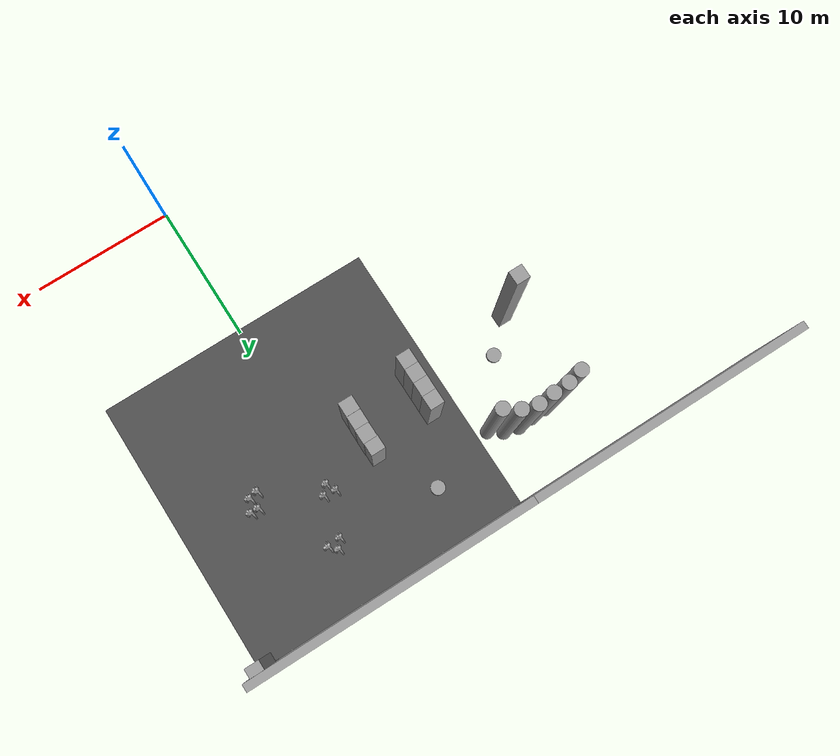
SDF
<sdf version="1.6">
 <model name="MW_world_1_0_0">
  <link name="link_0_0_clone">
   <pose>-16.5511 24.973 0.5 0 -0 0</pose>
   <inertial>
    <mass>9.05819</mass>
    <inertia><ixx>62.5018</ixx><ixy>0</ixy><ixz>0</ixz><iyy>62.5018</iyy><iyz>0</iyz><izz>1.13227</izz></inertia>
   </inertial>
   <visual name="visual_0">
    <geometry><cylinder><radius>0.5</radius><length>9.05819</length></cylinder></geometry>
    <material>
     <lighting>1</lighting>
     <script><uri>file://media/materials/scripts/gazebo.material</uri><name>Gazebo/Grey</name></script>
     <ambient>0.3 0.3 0.3 1</ambient>
     <diffuse>0.7 0.7 0.7 1</diffuse>
     <specular>0.01 0.01 0.01 1</specular>
     <emissive>0 0 0 1</emissive>
     <shader type="pixel"/>
    </material>
   </visual>
   <collision name="collision">
    <geometry><cylinder><radius>0.5</radius><length>9.05819</length></cylinder></geometry>
    <surface>
     <friction>
      <ode><mu>1</mu><mu2>1</mu2><fdir1>0 0 0</fdir1><slip1>0</slip1><slip2>0</slip2></ode>
      <torsional>
       <coefficient>1</coefficient>
       <patch_radius>0</patch_radius>
       <surface_radius>0</surface_radius>
       <use_patch_radius>1</use_patch_radius>
       <ode><slip>0</slip></ode>
      </torsional>
     </friction>
     <bounce><restitution_coefficient>0</restitution_coefficient><threshold>1e+06</threshold></bounce>
     <contact>
      <collide_without_contact>0</collide_without_contact>
      <collide_without_contact_bitmask>1</collide_without_contact_bitmask>
      <collide_bitmask>1</collide_bitmask>
      <ode>
       <soft_cfm>0</soft_cfm>
       <soft_erp>0.2</soft_erp>
       <kp>1e+13</kp>
       <kd>1</kd>
       <max_vel>0.01</max_vel>
       <min_depth>0</min_depth>
      </ode>
      <bullet>
       <split_impulse>1</split_impulse>
       <split_impulse_penetration_threshold>-0.01</split_impulse_penetration_threshold>
       <soft_cfm>0</soft_cfm>
       <soft_erp>0.2</soft_erp>
       <kp>1e+13</kp>
       <kd>1</kd>
      </bullet>
     </contact>
    </surface>
   </collision>
  </link>
  <link name="link_0_0_clone_3">
   <pose>-12.0571 25.0476 0.5 0 -0 0</pose>
   <inertial>
    <mass>9.05819</mass>
    <inertia><ixx>62.5018</ixx><ixy>0</ixy><ixz>0</ixz><iyy>62.5018</iyy><iyz>0</iyz><izz>1.13227</izz></inertia>
   </inertial>
   <visual name="visual_0">
    <geometry><cylinder><radius>0.5</radius><length>9.05819</length></cylinder></geometry>
    <material>
     <lighting>1</lighting>
     <script><uri>file://media/materials/scripts/gazebo.material</uri><name>Gazebo/Grey</name></script>
     <ambient>0.3 0.3 0.3 1</ambient>
     <diffuse>0.7 0.7 0.7 1</diffuse>
     <specular>0.01 0.01 0.01 1</specular>
     <emissive>0 0 0 1</emissive>
     <shader type="pixel"/>
    </material>
   </visual>
   <collision name="collision">
    <geometry><cylinder><radius>0.5</radius><length>9.05819</length></cylinder></geometry>
    <surface>
     <friction>
      <ode><mu>1</mu><mu2>1</mu2><fdir1>0 0 0</fdir1><slip1>0</slip1><slip2>0</slip2></ode>
      <torsional>
       <coefficient>1</coefficient>
       <patch_radius>0</patch_radius>
       <surface_radius>0</surface_radius>
       <use_patch_radius>1</use_patch_radius>
       <ode><slip>0</slip></ode>
      </torsional>
     </friction>
     <bounce><restitution_coefficient>0</restitution_coefficient><threshold>1e+06</threshold></bounce>
     <contact>
      <collide_without_contact>0</collide_without_contact>
      <collide_without_contact_bitmask>1</collide_without_contact_bitmask>
      <collide_bitmask>1</collide_bitmask>
      <ode>
       <soft_cfm>0</soft_cfm>
       <soft_erp>0.2</soft_erp>
       <kp>1e+13</kp>
       <kd>1</kd>
       <max_vel>0.01</max_vel>
       <min_depth>0</min_depth>
      </ode>
      <bullet>
       <split_impulse>1</split_impulse>
       <split_impulse_penetration_threshold>-0.01</split_impulse_penetration_threshold>
       <soft_cfm>0</soft_cfm>
       <soft_erp>0.2</soft_erp>
       <kp>1e+13</kp>
       <kd>1</kd>
      </bullet>
     </contact>
    </surface>
   </collision>
  </link>
  <link name="link_0_0_clone_3_clone">
   <pose>-14.321 25.2561 0.5 0 -0 0</pose>
   <inertial>
    <mass>9.05819</mass>
    <inertia><ixx>62.5018</ixx><ixy>0</ixy><ixz>0</ixz><iyy>62.5018</iyy><iyz>0</iyz><izz>1.13227</izz></inertia>
   </inertial>
   <visual name="visual_0">
    <geometry><cylinder><radius>0.5</radius><length>9.05819</length></cylinder></geometry>
    <material>
     <lighting>1</lighting>
     <script><uri>file://media/materials/scripts/gazebo.material</uri><name>Gazebo/Grey</name></script>
     <ambient>0.3 0.3 0.3 1</ambient>
     <diffuse>0.7 0.7 0.7 1</diffuse>
     <specular>0.01 0.01 0.01 1</specular>
     <emissive>0 0 0 1</emissive>
     <shader type="pixel"/>
    </material>
   </visual>
   <collision name="collision">
    <geometry><cylinder><radius>0.5</radius><length>9.05819</length></cylinder></geometry>
    <surface>
     <friction>
      <ode><mu>1</mu><mu2>1</mu2><fdir1>0 0 0</fdir1><slip1>0</slip1><slip2>0</slip2></ode>
      <torsional>
       <coefficient>1</coefficient>
       <patch_radius>0</patch_radius>
       <surface_radius>0</surface_radius>
       <use_patch_radius>1</use_patch_radius>
       <ode><slip>0</slip></ode>
      </torsional>
     </friction>
     <bounce><restitution_coefficient>0</restitution_coefficient><threshold>1e+06</threshold></bounce>
     <contact>
      <collide_without_contact>0</collide_without_contact>
      <collide_without_contact_bitmask>1</collide_without_contact_bitmask>
      <collide_bitmask>1</collide_bitmask>
      <ode>
       <soft_cfm>0</soft_cfm>
       <soft_erp>0.2</soft_erp>
       <kp>1e+13</kp>
       <kd>1</kd>
       <max_vel>0.01</max_vel>
       <min_depth>0</min_depth>
      </ode>
      <bullet>
       <split_impulse>1</split_impulse>
       <split_impulse_penetration_threshold>-0.01</split_impulse_penetration_threshold>
       <soft_cfm>0</soft_cfm>
       <soft_erp>0.2</soft_erp>
       <kp>1e+13</kp>
       <kd>1</kd>
      </bullet>
     </contact>
    </surface>
   </collision>
  </link>
  <link name="link_0_0_clone_3_clone_0">
   <pose>-15.468 25.2156 0.5 0 -0 0</pose>
   <inertial>
    <mass>9.05819</mass>
    <inertia><ixx>62.5018</ixx><ixy>0</ixy><ixz>0</ixz><iyy>62.5018</iyy><iyz>0</iyz><izz>1.13227</izz></inertia>
   </inertial>
   <visual name="visual_0">
    <geometry><cylinder><radius>0.5</radius><length>9.05819</length></cylinder></geometry>
    <material>
     <lighting>1</lighting>
     <script><uri>file://media/materials/scripts/gazebo.material</uri><name>Gazebo/Grey</name></script>
     <ambient>0.3 0.3 0.3 1</ambient>
     <diffuse>0.7 0.7 0.7 1</diffuse>
     <specular>0.01 0.01 0.01 1</specular>
     <emissive>0 0 0 1</emissive>
     <shader type="pixel"/>
    </material>
   </visual>
   <collision name="collision">
    <geometry><cylinder><radius>0.5</radius><length>9.05819</length></cylinder></geometry>
    <surface>
     <friction>
      <ode><mu>1</mu><mu2>1</mu2><fdir1>0 0 0</fdir1><slip1>0</slip1><slip2>0</slip2></ode>
      <torsional>
       <coefficient>1</coefficient>
       <patch_radius>0</patch_radius>
       <surface_radius>0</surface_radius>
       <use_patch_radius>1</use_patch_radius>
       <ode><slip>0</slip></ode>
      </torsional>
     </friction>
     <bounce><restitution_coefficient>0</restitution_coefficient><threshold>1e+06</threshold></bounce>
     <contact>
      <collide_without_contact>0</collide_without_contact>
      <collide_without_contact_bitmask>1</collide_without_contact_bitmask>
      <collide_bitmask>1</collide_bitmask>
      <ode>
       <soft_cfm>0</soft_cfm>
       <soft_erp>0.2</soft_erp>
       <kp>1e+13</kp>
       <kd>1</kd>
       <max_vel>0.01</max_vel>
       <min_depth>0</min_depth>
      </ode>
      <bullet>
       <split_impulse>1</split_impulse>
       <split_impulse_penetration_threshold>-0.01</split_impulse_penetration_threshold>
       <soft_cfm>0</soft_cfm>
       <soft_erp>0.2</soft_erp>
       <kp>1e+13</kp>
       <kd>1</kd>
      </bullet>
     </contact>
    </surface>
   </collision>
  </link>
  <link name="link_0_0_clone_3_clone_1">
   <pose>-13.1636 25.3461 0.5 0 -0 0</pose>
   <inertial>
    <mass>9.05819</mass>
    <inertia><ixx>62.5018</ixx><ixy>0</ixy><ixz>0</ixz><iyy>62.5018</iyy><iyz>0</iyz><izz>1.13227</izz></inertia>
   </inertial>
   <visual name="visual_0">
    <geometry><cylinder><radius>0.5</radius><length>9.05819</length></cylinder></geometry>
    <material>
     <lighting>1</lighting>
     <script><uri>file://media/materials/scripts/gazebo.material</uri><name>Gazebo/Grey</name></script>
     <ambient>0.3 0.3 0.3 1</ambient>
     <diffuse>0.7 0.7 0.7 1</diffuse>
     <specular>0.01 0.01 0.01 1</specular>
     <emissive>0 0 0 1</emissive>
     <shader type="pixel"/>
    </material>
   </visual>
   <collision name="collision">
    <geometry><cylinder><radius>0.5</radius><length>9.05819</length></cylinder></geometry>
    <surface>
     <friction>
      <ode><mu>1</mu><mu2>1</mu2><fdir1>0 0 0</fdir1><slip1>0</slip1><slip2>0</slip2></ode>
      <torsional>
       <coefficient>1</coefficient>
       <patch_radius>0</patch_radius>
       <surface_radius>0</surface_radius>
       <use_patch_radius>1</use_patch_radius>
       <ode><slip>0</slip></ode>
      </torsional>
     </friction>
     <bounce><restitution_coefficient>0</restitution_coefficient><threshold>1e+06</threshold></bounce>
     <contact>
      <collide_without_contact>0</collide_without_contact>
      <collide_without_contact_bitmask>1</collide_without_contact_bitmask>
      <collide_bitmask>1</collide_bitmask>
      <ode>
       <soft_cfm>0</soft_cfm>
       <soft_erp>0.2</soft_erp>
       <kp>1e+13</kp>
       <kd>1</kd>
       <max_vel>0.01</max_vel>
       <min_depth>0</min_depth>
      </ode>
      <bullet>
       <split_impulse>1</split_impulse>
       <split_impulse_penetration_threshold>-0.01</split_impulse_penetration_threshold>
       <soft_cfm>0</soft_cfm>
       <soft_erp>0.2</soft_erp>
       <kp>1e+13</kp>
       <kd>1</kd>
      </bullet>
     </contact>
    </surface>
   </collision>
  </link>
  <link name="link_0_0_clone_4">
   <pose>-11.0946 24.3921 0.5 0 -0 0</pose>
   <inertial>
    <mass>9.05819</mass>
    <inertia><ixx>62.5018</ixx><ixy>0</ixy><ixz>0</ixz><iyy>62.5018</iyy><iyz>0</iyz><izz>1.13227</izz></inertia>
   </inertial>
   <visual name="visual_0">
    <geometry><cylinder><radius>0.5</radius><length>9.05819</length></cylinder></geometry>
    <material>
     <lighting>1</lighting>
     <script><uri>file://media/materials/scripts/gazebo.material</uri><name>Gazebo/Grey</name></script>
     <ambient>0.3 0.3 0.3 1</ambient>
     <diffuse>0.7 0.7 0.7 1</diffuse>
     <specular>0.01 0.01 0.01 1</specular>
     <emissive>0 0 0 1</emissive>
     <shader type="pixel"/>
    </material>
   </visual>
   <collision name="collision">
    <geometry><cylinder><radius>0.5</radius><length>9.05819</length></cylinder></geometry>
    <surface>
     <friction>
      <ode><mu>1</mu><mu2>1</mu2><fdir1>0 0 0</fdir1><slip1>0</slip1><slip2>0</slip2></ode>
      <torsional>
       <coefficient>1</coefficient>
       <patch_radius>0</patch_radius>
       <surface_radius>0</surface_radius>
       <use_patch_radius>1</use_patch_radius>
       <ode><slip>0</slip></ode>
      </torsional>
     </friction>
     <bounce><restitution_coefficient>0</restitution_coefficient><threshold>1e+06</threshold></bounce>
     <contact>
      <collide_without_contact>0</collide_without_contact>
      <collide_without_contact_bitmask>1</collide_without_contact_bitmask>
      <collide_bitmask>1</collide_bitmask>
      <ode>
       <soft_cfm>0</soft_cfm>
       <soft_erp>0.2</soft_erp>
       <kp>1e+13</kp>
       <kd>1</kd>
       <max_vel>0.01</max_vel>
       <min_depth>0</min_depth>
      </ode>
      <bullet>
       <split_impulse>1</split_impulse>
       <split_impulse_penetration_threshold>-0.01</split_impulse_penetration_threshold>
       <soft_cfm>0</soft_cfm>
       <soft_erp>0.2</soft_erp>
       <kp>1e+13</kp>
       <kd>1</kd>
      </bullet>
     </contact>
    </surface>
   </collision>
  </link>
  <link name="link_0_clone_2">
   <pose>-5.5387 26.0842 0.5 0 -0 0</pose>
   <inertial>
    <mass>0.190242</mass>
    <inertia>
     <ixx>0.0124639</ixx>
     <ixy>0</ixy>
     <ixz>0</ixz>
     <iyy>0.0124639</iyy>
     <iyz>0</iyz>
     <izz>0.0237802</izz>
    </inertia>
   </inertial>
   <visual name="visual">
    <geometry><cylinder><radius>0.5</radius><length>0.190241</length></cylinder></geometry>
    <material>
     <lighting>1</lighting>
     <script><uri>file://media/materials/scripts/gazebo.material</uri><name>Gazebo/Grey</name></script>
     <ambient>0.3 0.3 0.3 1</ambient>
     <diffuse>0.7 0.7 0.7 1</diffuse>
     <specular>0.01 0.01 0.01 1</specular>
     <emissive>0 0 0 1</emissive>
     <shader type="pixel"/>
    </material>
   </visual>
   <collision name="collision">
    <geometry><cylinder><radius>0.5</radius><length>0.190241</length></cylinder></geometry>
    <surface>
     <friction>
      <ode><mu>1</mu><mu2>1</mu2><fdir1>0 0 0</fdir1><slip1>0</slip1><slip2>0</slip2></ode>
      <torsional>
       <coefficient>1</coefficient>
       <patch_radius>0</patch_radius>
       <surface_radius>0</surface_radius>
       <use_patch_radius>1</use_patch_radius>
       <ode><slip>0</slip></ode>
      </torsional>
     </friction>
     <bounce><restitution_coefficient>0</restitution_coefficient><threshold>1e+06</threshold></bounce>
     <contact>
      <collide_without_contact>0</collide_without_contact>
      <collide_without_contact_bitmask>1</collide_without_contact_bitmask>
      <collide_bitmask>1</collide_bitmask>
      <ode>
       <soft_cfm>0</soft_cfm>
       <soft_erp>0.2</soft_erp>
       <kp>1e+13</kp>
       <kd>1</kd>
       <max_vel>0.01</max_vel>
       <min_depth>0</min_depth>
      </ode>
      <bullet>
       <split_impulse>1</split_impulse>
       <split_impulse_penetration_threshold>-0.01</split_impulse_penetration_threshold>
       <soft_cfm>0</soft_cfm>
       <soft_erp>0.2</soft_erp>
       <kp>1e+13</kp>
       <kd>1</kd>
      </bullet>
     </contact>
    </surface>
   </collision>
  </link>
  <link name="link_0_clone_4">
   <pose>-13.5387 20.6273 0.5 0 -0 0</pose>
   <inertial>
    <mass>0.190242</mass>
    <inertia>
     <ixx>0.0124639</ixx>
     <ixy>0</ixy>
     <ixz>0</ixz>
     <iyy>0.0124639</iyy>
     <iyz>0</iyz>
     <izz>0.0237802</izz>
    </inertia>
   </inertial>
   <visual name="visual">
    <geometry><cylinder><radius>0.5</radius><length>0.190241</length></cylinder></geometry>
    <material>
     <lighting>1</lighting>
     <script><uri>file://media/materials/scripts/gazebo.material</uri><name>Gazebo/Grey</name></script>
     <ambient>0.3 0.3 0.3 1</ambient>
     <diffuse>0.7 0.7 0.7 1</diffuse>
     <specular>0.01 0.01 0.01 1</specular>
     <emissive>0 0 0 1</emissive>
     <shader type="pixel"/>
    </material>
   </visual>
   <collision name="collision">
    <geometry><cylinder><radius>0.5</radius><length>0.190241</length></cylinder></geometry>
    <surface>
     <friction>
      <ode><mu>1</mu><mu2>1</mu2><fdir1>0 0 0</fdir1><slip1>0</slip1><slip2>0</slip2></ode>
      <torsional>
       <coefficient>1</coefficient>
       <patch_radius>0</patch_radius>
       <surface_radius>0</surface_radius>
       <use_patch_radius>1</use_patch_radius>
       <ode><slip>0</slip></ode>
      </torsional>
     </friction>
     <bounce><restitution_coefficient>0</restitution_coefficient><threshold>1e+06</threshold></bounce>
     <contact>
      <collide_without_contact>0</collide_without_contact>
      <collide_without_contact_bitmask>1</collide_without_contact_bitmask>
      <collide_bitmask>1</collide_bitmask>
      <ode>
       <soft_cfm>0</soft_cfm>
       <soft_erp>0.2</soft_erp>
       <kp>1e+13</kp>
       <kd>1</kd>
       <max_vel>0.01</max_vel>
       <min_depth>0</min_depth>
      </ode>
      <bullet>
       <split_impulse>1</split_impulse>
       <split_impulse_penetration_threshold>-0.01</split_impulse_penetration_threshold>
       <soft_cfm>0</soft_cfm>
       <soft_erp>0.2</soft_erp>
       <kp>1e+13</kp>
       <kd>1</kd>
      </bullet>
     </contact>
    </surface>
   </collision>
  </link>
  <link name="link_0_clone_clone_0_clone_3">
   <pose>9.70026 29.6456 0.5 0 -0 0</pose>
   <inertial>
    <mass>9.47467</mass>
    <inertia><ixx>71.6676</ixx><ixy>0</ixy><ixz>0</ixz><iyy>71.6676</iyy><iyz>0</iyz><izz>1.57911</izz></inertia>
   </inertial>
   <visual name="visual">
    <geometry><box><size>1 1 9.47467</size></box></geometry>
    <material>
     <lighting>1</lighting>
     <script><uri>file://media/materials/scripts/gazebo.material</uri><name>Gazebo/Grey</name></script>
     <ambient>0.3 0.3 0.3 1</ambient>
     <diffuse>0.7 0.7 0.7 1</diffuse>
     <specular>0.01 0.01 0.01 1</specular>
     <emissive>0 0 0 1</emissive>
     <shader type="pixel"/>
    </material>
   </visual>
   <collision name="collision">
    <geometry><box><size>1 1 9.47467</size></box></geometry>
    <surface>
     <friction>
      <ode><mu>1</mu><mu2>1</mu2><fdir1>0 0 0</fdir1><slip1>0</slip1><slip2>0</slip2></ode>
      <torsional>
       <coefficient>1</coefficient>
       <patch_radius>0</patch_radius>
       <surface_radius>0</surface_radius>
       <use_patch_radius>1</use_patch_radius>
       <ode><slip>0</slip></ode>
      </torsional>
     </friction>
     <bounce><restitution_coefficient>0</restitution_coefficient><threshold>1e+06</threshold></bounce>
     <contact>
      <collide_without_contact>0</collide_without_contact>
      <collide_without_contact_bitmask>1</collide_without_contact_bitmask>
      <collide_bitmask>1</collide_bitmask>
      <ode>
       <soft_cfm>0</soft_cfm>
       <soft_erp>0.2</soft_erp>
       <kp>1e+13</kp>
       <kd>1</kd>
       <max_vel>0.01</max_vel>
       <min_depth>0</min_depth>
      </ode>
      <bullet>
       <split_impulse>1</split_impulse>
       <split_impulse_penetration_threshold>-0.01</split_impulse_penetration_threshold>
       <soft_cfm>0</soft_cfm>
       <soft_erp>0.2</soft_erp>
       <kp>1e+13</kp>
       <kd>1</kd>
      </bullet>
     </contact>
    </surface>
   </collision>
  </link>
  <link name="link_0_clone_clone_clone_1_clone_clone">
   <pose>-16.6638 17.8661 0.5 0 -0 0</pose>
   <inertial>
    <mass>9.47467</mass>
    <inertia><ixx>71.6676</ixx><ixy>0</ixy><ixz>0</ixz><iyy>71.6676</iyy><iyz>0</iyz><izz>1.57911</izz></inertia>
   </inertial>
   <visual name="visual">
    <geometry><box><size>1 1 9.47467</size></box></geometry>
    <material>
     <lighting>1</lighting>
     <script><uri>file://media/materials/scripts/gazebo.material</uri><name>Gazebo/Grey</name></script>
     <ambient>0.3 0.3 0.3 1</ambient>
     <diffuse>0.7 0.7 0.7 1</diffuse>
     <specular>0.01 0.01 0.01 1</specular>
     <emissive>0 0 0 1</emissive>
     <shader type="pixel"/>
    </material>
   </visual>
   <collision name="collision">
    <geometry><box><size>1 1 9.47467</size></box></geometry>
    <surface>
     <friction>
      <ode><mu>1</mu><mu2>1</mu2><fdir1>0 0 0</fdir1><slip1>0</slip1><slip2>0</slip2></ode>
      <torsional>
       <coefficient>1</coefficient>
       <patch_radius>0</patch_radius>
       <surface_radius>0</surface_radius>
       <use_patch_radius>1</use_patch_radius>
       <ode><slip>0</slip></ode>
      </torsional>
     </friction>
     <bounce><restitution_coefficient>0</restitution_coefficient><threshold>1e+06</threshold></bounce>
     <contact>
      <collide_without_contact>0</collide_without_contact>
      <collide_without_contact_bitmask>1</collide_without_contact_bitmask>
      <collide_bitmask>1</collide_bitmask>
      <ode>
       <soft_cfm>0</soft_cfm>
       <soft_erp>0.2</soft_erp>
       <kp>1e+13</kp>
       <kd>1</kd>
       <max_vel>0.01</max_vel>
       <min_depth>0</min_depth>
      </ode>
      <bullet>
       <split_impulse>1</split_impulse>
       <split_impulse_penetration_threshold>-0.01</split_impulse_penetration_threshold>
       <soft_cfm>0</soft_cfm>
       <soft_erp>0.2</soft_erp>
       <kp>1e+13</kp>
       <kd>1</kd>
      </bullet>
     </contact>
    </surface>
   </collision>
  </link>
  <link name="link_0_clone_clone_clone_4_clone">
   <pose>-3.22382 19.2327 0.5 0 -0 0</pose>
   <inertial>
    <mass>9.47467</mass>
    <inertia><ixx>71.6676</ixx><ixy>0</ixy><ixz>0</ixz><iyy>71.6676</iyy><iyz>0</iyz><izz>1.57911</izz></inertia>
   </inertial>
   <visual name="visual">
    <geometry><box><size>1 1 9.47467</size></box></geometry>
    <material>
     <lighting>1</lighting>
     <script><uri>file://media/materials/scripts/gazebo.material</uri><name>Gazebo/Grey</name></script>
     <ambient>0.3 0.3 0.3 1</ambient>
     <diffuse>0.7 0.7 0.7 1</diffuse>
     <specular>0.01 0.01 0.01 1</specular>
     <emissive>0 0 0 1</emissive>
     <shader type="pixel"/>
    </material>
   </visual>
   <collision name="collision">
    <geometry><box><size>1 1 9.47467</size></box></geometry>
    <surface>
     <friction>
      <ode><mu>1</mu><mu2>1</mu2><fdir1>0 0 0</fdir1><slip1>0</slip1><slip2>0</slip2></ode>
      <torsional>
       <coefficient>1</coefficient>
       <patch_radius>0</patch_radius>
       <surface_radius>0</surface_radius>
       <use_patch_radius>1</use_patch_radius>
       <ode><slip>0</slip></ode>
      </torsional>
     </friction>
     <bounce><restitution_coefficient>0</restitution_coefficient><threshold>1e+06</threshold></bounce>
     <contact>
      <collide_without_contact>0</collide_without_contact>
      <collide_without_contact_bitmask>1</collide_without_contact_bitmask>
      <collide_bitmask>1</collide_bitmask>
      <ode>
       <soft_cfm>0</soft_cfm>
       <soft_erp>0.2</soft_erp>
       <kp>1e+13</kp>
       <kd>1</kd>
       <max_vel>0.01</max_vel>
       <min_depth>0</min_depth>
      </ode>
      <bullet>
       <split_impulse>1</split_impulse>
       <split_impulse_penetration_threshold>-0.01</split_impulse_penetration_threshold>
       <soft_cfm>0</soft_cfm>
       <soft_erp>0.2</soft_erp>
       <kp>1e+13</kp>
       <kd>1</kd>
      </bullet>
     </contact>
    </surface>
   </collision>
  </link>
  <link name="link_0_clone_clone_clone_4_clone_0">
   <pose>-3.2149 20.2383 0.5 0 -0 0</pose>
   <inertial>
    <mass>9.47467</mass>
    <inertia><ixx>71.6676</ixx><ixy>0</ixy><ixz>0</ixz><iyy>71.6676</iyy><iyz>0</iyz><izz>1.57911</izz></inertia>
   </inertial>
   <visual name="visual">
    <geometry><box><size>1 1 9.47467</size></box></geometry>
    <material>
     <lighting>1</lighting>
     <script><uri>file://media/materials/scripts/gazebo.material</uri><name>Gazebo/Grey</name></script>
     <ambient>0.3 0.3 0.3 1</ambient>
     <diffuse>0.7 0.7 0.7 1</diffuse>
     <specular>0.01 0.01 0.01 1</specular>
     <emissive>0 0 0 1</emissive>
     <shader type="pixel"/>
    </material>
   </visual>
   <collision name="collision">
    <geometry><box><size>1 1 9.47467</size></box></geometry>
    <surface>
     <friction>
      <ode><mu>1</mu><mu2>1</mu2><fdir1>0 0 0</fdir1><slip1>0</slip1><slip2>0</slip2></ode>
      <torsional>
       <coefficient>1</coefficient>
       <patch_radius>0</patch_radius>
       <surface_radius>0</surface_radius>
       <use_patch_radius>1</use_patch_radius>
       <ode><slip>0</slip></ode>
      </torsional>
     </friction>
     <bounce><restitution_coefficient>0</restitution_coefficient><threshold>1e+06</threshold></bounce>
     <contact>
      <collide_without_contact>0</collide_without_contact>
      <collide_without_contact_bitmask>1</collide_without_contact_bitmask>
      <collide_bitmask>1</collide_bitmask>
      <ode>
       <soft_cfm>0</soft_cfm>
       <soft_erp>0.2</soft_erp>
       <kp>1e+13</kp>
       <kd>1</kd>
       <max_vel>0.01</max_vel>
       <min_depth>0</min_depth>
      </ode>
      <bullet>
       <split_impulse>1</split_impulse>
       <split_impulse_penetration_threshold>-0.01</split_impulse_penetration_threshold>
       <soft_cfm>0</soft_cfm>
       <soft_erp>0.2</soft_erp>
       <kp>1e+13</kp>
       <kd>1</kd>
      </bullet>
     </contact>
    </surface>
   </collision>
  </link>
  <link name="link_0_clone_clone_clone_4_clone_1">
   <pose>-3.20225 21.201 0.5 0 -0 0</pose>
   <inertial>
    <mass>9.47467</mass>
    <inertia><ixx>71.6676</ixx><ixy>0</ixy><ixz>0</ixz><iyy>71.6676</iyy><iyz>0</iyz><izz>1.57911</izz></inertia>
   </inertial>
   <visual name="visual">
    <geometry><box><size>1 1 9.47467</size></box></geometry>
    <material>
     <lighting>1</lighting>
     <script><uri>file://media/materials/scripts/gazebo.material</uri><name>Gazebo/Grey</name></script>
     <ambient>0.3 0.3 0.3 1</ambient>
     <diffuse>0.7 0.7 0.7 1</diffuse>
     <specular>0.01 0.01 0.01 1</specular>
     <emissive>0 0 0 1</emissive>
     <shader type="pixel"/>
    </material>
   </visual>
   <collision name="collision">
    <geometry><box><size>1 1 9.47467</size></box></geometry>
    <surface>
     <friction>
      <ode><mu>1</mu><mu2>1</mu2><fdir1>0 0 0</fdir1><slip1>0</slip1><slip2>0</slip2></ode>
      <torsional>
       <coefficient>1</coefficient>
       <patch_radius>0</patch_radius>
       <surface_radius>0</surface_radius>
       <use_patch_radius>1</use_patch_radius>
       <ode><slip>0</slip></ode>
      </torsional>
     </friction>
     <bounce><restitution_coefficient>0</restitution_coefficient><threshold>1e+06</threshold></bounce>
     <contact>
      <collide_without_contact>0</collide_without_contact>
      <collide_without_contact_bitmask>1</collide_without_contact_bitmask>
      <collide_bitmask>1</collide_bitmask>
      <ode>
       <soft_cfm>0</soft_cfm>
       <soft_erp>0.2</soft_erp>
       <kp>1e+13</kp>
       <kd>1</kd>
       <max_vel>0.01</max_vel>
       <min_depth>0</min_depth>
      </ode>
      <bullet>
       <split_impulse>1</split_impulse>
       <split_impulse_penetration_threshold>-0.01</split_impulse_penetration_threshold>
       <soft_cfm>0</soft_cfm>
       <soft_erp>0.2</soft_erp>
       <kp>1e+13</kp>
       <kd>1</kd>
      </bullet>
     </contact>
    </surface>
   </collision>
  </link>
  <link name="link_0_clone_clone_clone_4_clone_2">
   <pose>-7.78727 18.6456 0.5 0 -0 0</pose>
   <inertial>
    <mass>9.47467</mass>
    <inertia><ixx>71.6676</ixx><ixy>0</ixy><ixz>0</ixz><iyy>71.6676</iyy><iyz>0</iyz><izz>1.57911</izz></inertia>
   </inertial>
   <visual name="visual">
    <geometry><box><size>1 1 9.47467</size></box></geometry>
    <material>
     <lighting>1</lighting>
     <script><uri>file://media/materials/scripts/gazebo.material</uri><name>Gazebo/Grey</name></script>
     <ambient>0.3 0.3 0.3 1</ambient>
     <diffuse>0.7 0.7 0.7 1</diffuse>
     <specular>0.01 0.01 0.01 1</specular>
     <emissive>0 0 0 1</emissive>
     <shader type="pixel"/>
    </material>
   </visual>
   <collision name="collision">
    <geometry><box><size>1 1 9.47467</size></box></geometry>
    <surface>
     <friction>
      <ode><mu>1</mu><mu2>1</mu2><fdir1>0 0 0</fdir1><slip1>0</slip1><slip2>0</slip2></ode>
      <torsional>
       <coefficient>1</coefficient>
       <patch_radius>0</patch_radius>
       <surface_radius>0</surface_radius>
       <use_patch_radius>1</use_patch_radius>
       <ode><slip>0</slip></ode>
      </torsional>
     </friction>
     <bounce><restitution_coefficient>0</restitution_coefficient><threshold>1e+06</threshold></bounce>
     <contact>
      <collide_without_contact>0</collide_without_contact>
      <collide_without_contact_bitmask>1</collide_without_contact_bitmask>
      <collide_bitmask>1</collide_bitmask>
      <ode>
       <soft_cfm>0</soft_cfm>
       <soft_erp>0.2</soft_erp>
       <kp>1e+13</kp>
       <kd>1</kd>
       <max_vel>0.01</max_vel>
       <min_depth>0</min_depth>
      </ode>
      <bullet>
       <split_impulse>1</split_impulse>
       <split_impulse_penetration_threshold>-0.01</split_impulse_penetration_threshold>
       <soft_cfm>0</soft_cfm>
       <soft_erp>0.2</soft_erp>
       <kp>1e+13</kp>
       <kd>1</kd>
      </bullet>
     </contact>
    </surface>
   </collision>
  </link>
  <link name="link_0_clone_clone_clone_4_clone_3">
   <pose>-7.78727 19.6456 0.5 0 -0 0</pose>
   <inertial>
    <mass>9.47467</mass>
    <inertia><ixx>71.6676</ixx><ixy>0</ixy><ixz>0</ixz><iyy>71.6676</iyy><iyz>0</iyz><izz>1.57911</izz></inertia>
   </inertial>
   <visual name="visual">
    <geometry><box><size>1 1 9.47467</size></box></geometry>
    <material>
     <lighting>1</lighting>
     <script><uri>file://media/materials/scripts/gazebo.material</uri><name>Gazebo/Grey</name></script>
     <ambient>0.3 0.3 0.3 1</ambient>
     <diffuse>0.7 0.7 0.7 1</diffuse>
     <specular>0.01 0.01 0.01 1</specular>
     <emissive>0 0 0 1</emissive>
     <shader type="pixel"/>
    </material>
   </visual>
   <collision name="collision">
    <geometry><box><size>1 1 9.47467</size></box></geometry>
    <surface>
     <friction>
      <ode><mu>1</mu><mu2>1</mu2><fdir1>0 0 0</fdir1><slip1>0</slip1><slip2>0</slip2></ode>
      <torsional>
       <coefficient>1</coefficient>
       <patch_radius>0</patch_radius>
       <surface_radius>0</surface_radius>
       <use_patch_radius>1</use_patch_radius>
       <ode><slip>0</slip></ode>
      </torsional>
     </friction>
     <bounce><restitution_coefficient>0</restitution_coefficient><threshold>1e+06</threshold></bounce>
     <contact>
      <collide_without_contact>0</collide_without_contact>
      <collide_without_contact_bitmask>1</collide_without_contact_bitmask>
      <collide_bitmask>1</collide_bitmask>
      <ode>
       <soft_cfm>0</soft_cfm>
       <soft_erp>0.2</soft_erp>
       <kp>1e+13</kp>
       <kd>1</kd>
       <max_vel>0.01</max_vel>
       <min_depth>0</min_depth>
      </ode>
      <bullet>
       <split_impulse>1</split_impulse>
       <split_impulse_penetration_threshold>-0.01</split_impulse_penetration_threshold>
       <soft_cfm>0</soft_cfm>
       <soft_erp>0.2</soft_erp>
       <kp>1e+13</kp>
       <kd>1</kd>
      </bullet>
     </contact>
    </surface>
   </collision>
  </link>
  <link name="link_0_clone_clone_clone_4_clone_4">
   <pose>-7.78727 20.6456 0.5 0 -0 0</pose>
   <inertial>
    <mass>9.47467</mass>
    <inertia><ixx>71.6676</ixx><ixy>0</ixy><ixz>0</ixz><iyy>71.6676</iyy><iyz>0</iyz><izz>1.57911</izz></inertia>
   </inertial>
   <visual name="visual">
    <geometry><box><size>1 1 9.47467</size></box></geometry>
    <material>
     <lighting>1</lighting>
     <script><uri>file://media/materials/scripts/gazebo.material</uri><name>Gazebo/Grey</name></script>
     <ambient>0.3 0.3 0.3 1</ambient>
     <diffuse>0.7 0.7 0.7 1</diffuse>
     <specular>0.01 0.01 0.01 1</specular>
     <emissive>0 0 0 1</emissive>
     <shader type="pixel"/>
    </material>
   </visual>
   <collision name="collision">
    <geometry><box><size>1 1 9.47467</size></box></geometry>
    <surface>
     <friction>
      <ode><mu>1</mu><mu2>1</mu2><fdir1>0 0 0</fdir1><slip1>0</slip1><slip2>0</slip2></ode>
      <torsional>
       <coefficient>1</coefficient>
       <patch_radius>0</patch_radius>
       <surface_radius>0</surface_radius>
       <use_patch_radius>1</use_patch_radius>
       <ode><slip>0</slip></ode>
      </torsional>
     </friction>
     <bounce><restitution_coefficient>0</restitution_coefficient><threshold>1e+06</threshold></bounce>
     <contact>
      <collide_without_contact>0</collide_without_contact>
      <collide_without_contact_bitmask>1</collide_without_contact_bitmask>
      <collide_bitmask>1</collide_bitmask>
      <ode>
       <soft_cfm>0</soft_cfm>
       <soft_erp>0.2</soft_erp>
       <kp>1e+13</kp>
       <kd>1</kd>
       <max_vel>0.01</max_vel>
       <min_depth>0</min_depth>
      </ode>
      <bullet>
       <split_impulse>1</split_impulse>
       <split_impulse_penetration_threshold>-0.01</split_impulse_penetration_threshold>
       <soft_cfm>0</soft_cfm>
       <soft_erp>0.2</soft_erp>
       <kp>1e+13</kp>
       <kd>1</kd>
      </bullet>
     </contact>
    </surface>
   </collision>
  </link>
  <link name="link_0_clone_clone_clone_4_clone_5">
   <pose>-7.78727 21.6456 0.5 0 -0 0</pose>
   <inertial>
    <mass>9.47467</mass>
    <inertia><ixx>71.6676</ixx><ixy>0</ixy><ixz>0</ixz><iyy>71.6676</iyy><iyz>0</iyz><izz>1.57911</izz></inertia>
   </inertial>
   <visual name="visual">
    <geometry><box><size>1 1 9.47467</size></box></geometry>
    <material>
     <lighting>1</lighting>
     <script><uri>file://media/materials/scripts/gazebo.material</uri><name>Gazebo/Grey</name></script>
     <ambient>0.3 0.3 0.3 1</ambient>
     <diffuse>0.7 0.7 0.7 1</diffuse>
     <specular>0.01 0.01 0.01 1</specular>
     <emissive>0 0 0 1</emissive>
     <shader type="pixel"/>
    </material>
   </visual>
   <collision name="collision">
    <geometry><box><size>1 1 9.47467</size></box></geometry>
    <surface>
     <friction>
      <ode><mu>1</mu><mu2>1</mu2><fdir1>0 0 0</fdir1><slip1>0</slip1><slip2>0</slip2></ode>
      <torsional>
       <coefficient>1</coefficient>
       <patch_radius>0</patch_radius>
       <surface_radius>0</surface_radius>
       <use_patch_radius>1</use_patch_radius>
       <ode><slip>0</slip></ode>
      </torsional>
     </friction>
     <bounce><restitution_coefficient>0</restitution_coefficient><threshold>1e+06</threshold></bounce>
     <contact>
      <collide_without_contact>0</collide_without_contact>
      <collide_without_contact_bitmask>1</collide_without_contact_bitmask>
      <collide_bitmask>1</collide_bitmask>
      <ode>
       <soft_cfm>0</soft_cfm>
       <soft_erp>0.2</soft_erp>
       <kp>1e+13</kp>
       <kd>1</kd>
       <max_vel>0.01</max_vel>
       <min_depth>0</min_depth>
      </ode>
      <bullet>
       <split_impulse>1</split_impulse>
       <split_impulse_penetration_threshold>-0.01</split_impulse_penetration_threshold>
       <soft_cfm>0</soft_cfm>
       <soft_erp>0.2</soft_erp>
       <kp>1e+13</kp>
       <kd>1</kd>
      </bullet>
     </contact>
    </surface>
   </collision>
  </link>
  <link name="link_0_clone_clone_clone_4_clone_clone">
   <pose>-3.23173 22.0842 0.5 0 -0 0</pose>
   <inertial>
    <mass>9.47467</mass>
    <inertia><ixx>71.6676</ixx><ixy>0</ixy><ixz>0</ixz><iyy>71.6676</iyy><iyz>0</iyz><izz>1.57911</izz></inertia>
   </inertial>
   <visual name="visual">
    <geometry><box><size>1 1 9.47467</size></box></geometry>
    <material>
     <lighting>1</lighting>
     <script><uri>file://media/materials/scripts/gazebo.material</uri><name>Gazebo/Grey</name></script>
     <ambient>0.3 0.3 0.3 1</ambient>
     <diffuse>0.7 0.7 0.7 1</diffuse>
     <specular>0.01 0.01 0.01 1</specular>
     <emissive>0 0 0 1</emissive>
     <shader type="pixel"/>
    </material>
   </visual>
   <collision name="collision">
    <geometry><box><size>1 1 9.47467</size></box></geometry>
    <surface>
     <friction>
      <ode><mu>1</mu><mu2>1</mu2><fdir1>0 0 0</fdir1><slip1>0</slip1><slip2>0</slip2></ode>
      <torsional>
       <coefficient>1</coefficient>
       <patch_radius>0</patch_radius>
       <surface_radius>0</surface_radius>
       <use_patch_radius>1</use_patch_radius>
       <ode><slip>0</slip></ode>
      </torsional>
     </friction>
     <bounce><restitution_coefficient>0</restitution_coefficient><threshold>1e+06</threshold></bounce>
     <contact>
      <collide_without_contact>0</collide_without_contact>
      <collide_without_contact_bitmask>1</collide_without_contact_bitmask>
      <collide_bitmask>1</collide_bitmask>
      <ode>
       <soft_cfm>0</soft_cfm>
       <soft_erp>0.2</soft_erp>
       <kp>1e+13</kp>
       <kd>1</kd>
       <max_vel>0.01</max_vel>
       <min_depth>0</min_depth>
      </ode>
      <bullet>
       <split_impulse>1</split_impulse>
       <split_impulse_penetration_threshold>-0.01</split_impulse_penetration_threshold>
       <soft_cfm>0</soft_cfm>
       <soft_erp>0.2</soft_erp>
       <kp>1e+13</kp>
       <kd>1</kd>
      </bullet>
     </contact>
    </surface>
   </collision>
  </link>
  <model name="asphalt_plane_clone_0">
   <static>1</static>
   <link name="link">
    <collision name="collision"><geometry><box><size>20 20 0.1</size></box></geometry></collision>
    <visual name="visual">
     <cast_shadows>0</cast_shadows>
     <geometry><box><size>20 20 0.1</size></box></geometry>
     <material>
      <script>
       <uri>model://asphalt_plane/materials/scripts</uri>
       <uri>model://asphalt_plane/materials/textures</uri>
       <name>vrc/asphalt</name>
      </script>
     </material>
    </visual>
   </link>
   <pose>0.35425 19.7871 0 0 -0 0</pose>
  </model>
  <model name="grey_wall_mw_clone_2_clone_clone_0">
   <link name="link">
    <pose>-8.81665 -2.69351 1.4 0 -0 0</pose>
    <inertial>
     <inertia><ixx>nan</ixx><ixy>0</ixy><ixz>0</ixz><iyy>nan</iyy><iyz>0</iyz><izz>nan</izz></inertia>
     <mass>0</mass>
    </inertial>
    <visual name="visual">
     <cast_shadows>0</cast_shadows>
     <geometry><box><size>20.2056 0.556506 8.63552</size></box></geometry>
     <material>
      <script>
       <uri>model://grey_wall/materials/scripts</uri>
       <uri>model://grey_wall/materials/textures</uri>
       <name>vrc/grey_wall</name>
      </script>
      <ambient>1 1 1 1</ambient>
      <diffuse>1 1 1 1</diffuse>
      <specular>0 0 0 1</specular>
      <emissive>0 0 0 1</emissive>
     </material>
    </visual>
    <collision name="collision">
     <geometry><box><size>20.2056 0.556506 8.63552</size></box></geometry>
     <surface>
      <friction>
       <ode><mu>1</mu><mu2>1</mu2><fdir1>0 0 0</fdir1><slip1>0</slip1><slip2>0</slip2></ode>
       <torsional>
        <coefficient>1</coefficient>
        <patch_radius>0</patch_radius>
        <surface_radius>0</surface_radius>
        <use_patch_radius>1</use_patch_radius>
        <ode><slip>0</slip></ode>
       </torsional>
      </friction>
      <bounce><restitution_coefficient>0</restitution_coefficient><threshold>1e+06</threshold></bounce>
      <contact>
       <collide_without_contact>0</collide_without_contact>
       <collide_without_contact_bitmask>1</collide_without_contact_bitmask>
       <collide_bitmask>1</collide_bitmask>
       <ode>
        <soft_cfm>0</soft_cfm>
        <soft_erp>0.2</soft_erp>
        <kp>1e+13</kp>
        <kd>1</kd>
        <max_vel>0.01</max_vel>
        <min_depth>0</min_depth>
       </ode>
       <bullet>
        <split_impulse>1</split_impulse>
        <split_impulse_penetration_threshold>-0.01</split_impulse_penetration_threshold>
        <soft_cfm>0</soft_cfm>
        <soft_erp>0.2</soft_erp>
        <kp>1e+13</kp>
        <kd>1</kd>
       </bullet>
      </contact>
     </surface>
    </collision>
   </link>
   <static>1</static>
   <pose>9.35425 32.7871 0 0 -0 0</pose>
  </model>
  <model name="grey_wall_mw_clone_2_clone_clone_0_clone">
   <link name="link">
    <pose>-8.81665 -2.69351 1.4 0 -0 0</pose>
    <inertial>
     <inertia><ixx>nan</ixx><ixy>0</ixy><ixz>0</ixz><iyy>nan</iyy><iyz>0</iyz><izz>nan</izz></inertia>
     <mass>0</mass>
    </inertial>
    <visual name="visual">
     <cast_shadows>0</cast_shadows>
     <geometry><box><size>20.2056 0.556506 8.63552</size></box></geometry>
     <material>
      <script>
       <uri>model://grey_wall/materials/scripts</uri>
       <uri>model://grey_wall/materials/textures</uri>
       <name>vrc/grey_wall</name>
      </script>
      <ambient>1 1 1 1</ambient>
      <diffuse>1 1 1 1</diffuse>
      <specular>0 0 0 1</specular>
      <emissive>0 0 0 1</emissive>
     </material>
    </visual>
    <collision name="collision">
     <geometry><box><size>20.2056 0.556506 8.63552</size></box></geometry>
     <surface>
      <friction>
       <ode><mu>1</mu><mu2>1</mu2><fdir1>0 0 0</fdir1><slip1>0</slip1><slip2>0</slip2></ode>
       <torsional>
        <coefficient>1</coefficient>
        <patch_radius>0</patch_radius>
        <surface_radius>0</surface_radius>
        <use_patch_radius>1</use_patch_radius>
        <ode><slip>0</slip></ode>
       </torsional>
      </friction>
      <bounce><restitution_coefficient>0</restitution_coefficient><threshold>1e+06</threshold></bounce>
      <contact>
       <collide_without_contact>0</collide_without_contact>
       <collide_without_contact_bitmask>1</collide_without_contact_bitmask>
       <collide_bitmask>1</collide_bitmask>
       <ode>
        <soft_cfm>0</soft_cfm>
        <soft_erp>0.2</soft_erp>
        <kp>1e+13</kp>
        <kd>1</kd>
        <max_vel>0.01</max_vel>
        <min_depth>0</min_depth>
       </ode>
       <bullet>
        <split_impulse>1</split_impulse>
        <split_impulse_penetration_threshold>-0.01</split_impulse_penetration_threshold>
        <soft_cfm>0</soft_cfm>
        <soft_erp>0.2</soft_erp>
        <kp>1e+13</kp>
        <kd>1</kd>
       </bullet>
      </contact>
     </surface>
    </collision>
   </link>
   <static>1</static>
   <pose>-10.6457 32.7871 0 0 -0 0</pose>
  </model>
  <model name="person_walking_clone_6_clone_0">
   <link name="link">
    <inertial>
     <pose>0 0 0.95 0 -0 0</pose>
     <mass>80</mass>
     <inertia><ixx>27.82</ixx><ixy>0</ixy><ixz>0</ixz><iyy>24.88</iyy><iyz>0</iyz><izz>4.57</izz></inertia>
    </inertial>
    <collision name="bottom">
     <pose>0 0 0.01 0 -0 0</pose>
     <geometry><box><size>0.35 0.75 0.02</size></box></geometry>
    </collision>
    <collision name="person">
     <pose>0 0 -0.02 0 -0 0</pose>
     <geometry><mesh><uri>model://person_walking/meshes/walking.dae</uri></mesh></geometry>
    </collision>
    <visual name="visual">
     <pose>0 0 -0.02 0 -0 0</pose>
     <geometry><mesh><uri>model://person_walking/meshes/walking.dae</uri></mesh></geometry>
    </visual>
   </link>
   <pose>0.21273 22.6456 0 0 -0 0</pose>
  </model>
  <model name="person_walking_clone_6_clone_2">
   <link name="link">
    <inertial>
     <pose>0 0 0.95 0 -0 0</pose>
     <mass>80</mass>
     <inertia><ixx>27.82</ixx><ixy>0</ixy><ixz>0</ixz><iyy>24.88</iyy><iyz>0</iyz><izz>4.57</izz></inertia>
    </inertial>
    <collision name="bottom">
     <pose>0 0 0.01 0 -0 0</pose>
     <geometry><box><size>0.35 0.75 0.02</size></box></geometry>
    </collision>
    <collision name="person">
     <pose>0 0 -0.02 0 -0 0</pose>
     <geometry><mesh><uri>model://person_walking/meshes/walking.dae</uri></mesh></geometry>
    </collision>
    <visual name="visual">
     <pose>0 0 -0.02 0 -0 0</pose>
     <geometry><mesh><uri>model://person_walking/meshes/walking.dae</uri></mesh></geometry>
    </visual>
   </link>
   <pose>5.21273 20.152 0 0 -0 0</pose>
  </model>
  <model name="person_walking_clone_6_clone_2_clone">
   <link name="link">
    <inertial>
     <pose>0 0 0.95 0 -0 0</pose>
     <mass>80</mass>
     <inertia><ixx>27.82</ixx><ixy>0</ixy><ixz>0</ixz><iyy>24.88</iyy><iyz>0</iyz><izz>4.57</izz></inertia>
    </inertial>
    <collision name="bottom">
     <pose>0 0 0.01 0 -0 0</pose>
     <geometry><box><size>0.35 0.75 0.02</size></box></geometry>
    </collision>
    <collision name="person">
     <pose>0 0 -0.02 0 -0 0</pose>
     <geometry><mesh><uri>model://person_walking/meshes/walking.dae</uri></mesh></geometry>
    </collision>
    <visual name="visual">
     <pose>0 0 -0.02 0 -0 0</pose>
     <geometry><mesh><uri>model://person_walking/meshes/walking.dae</uri></mesh></geometry>
    </visual>
   </link>
   <pose>1.05927 22.5607 0 0 -0 0</pose>
  </model>
  <model name="person_walking_clone_6_clone_2_clone_0">
   <link name="link">
    <inertial>
     <pose>0 0 0.95 0 -0 0</pose>
     <mass>80</mass>
     <inertia><ixx>27.82</ixx><ixy>0</ixy><ixz>0</ixz><iyy>24.88</iyy><iyz>0</iyz><izz>4.57</izz></inertia>
    </inertial>
    <collision name="bottom">
     <pose>0 0 0.01 0 -0 0</pose>
     <geometry><box><size>0.35 0.75 0.02</size></box></geometry>
    </collision>
    <collision name="person">
     <pose>0 0 -0.02 0 -0 0</pose>
     <geometry><mesh><uri>model://person_walking/meshes/walking.dae</uri></mesh></geometry>
    </collision>
    <visual name="visual">
     <pose>0 0 -0.02 0 -0 0</pose>
     <geometry><mesh><uri>model://person_walking/meshes/walking.dae</uri></mesh></geometry>
    </visual>
   </link>
   <pose>0.5362 21.9942 0 0 -0 0</pose>
  </model>
  <model name="person_walking_clone_6_clone_2_clone_2">
   <link name="link">
    <inertial>
     <pose>0 0 0.95 0 -0 0</pose>
     <mass>80</mass>
     <inertia><ixx>27.82</ixx><ixy>0</ixy><ixz>0</ixz><iyy>24.88</iyy><iyz>0</iyz><izz>4.57</izz></inertia>
    </inertial>
    <collision name="bottom">
     <pose>0 0 0.01 0 -0 0</pose>
     <geometry><box><size>0.35 0.75 0.02</size></box></geometry>
    </collision>
    <collision name="person">
     <pose>0 0 -0.02 0 -0 0</pose>
     <geometry><mesh><uri>model://person_walking/meshes/walking.dae</uri></mesh></geometry>
    </collision>
    <visual name="visual">
     <pose>0 0 -0.02 0 -0 0</pose>
     <geometry><mesh><uri>model://person_walking/meshes/walking.dae</uri></mesh></geometry>
    </visual>
   </link>
   <pose>2.05927 25.9942 0 0 -0 0</pose>
  </model>
  <model name="person_walking_clone_6_clone_2_clone_3">
   <link name="link">
    <inertial>
     <pose>0 0 0.95 0 -0 0</pose>
     <mass>80</mass>
     <inertia><ixx>27.82</ixx><ixy>0</ixy><ixz>0</ixz><iyy>24.88</iyy><iyz>0</iyz><izz>4.57</izz></inertia>
    </inertial>
    <collision name="bottom">
     <pose>0 0 0.01 0 -0 0</pose>
     <geometry><box><size>0.35 0.75 0.02</size></box></geometry>
    </collision>
    <collision name="person">
     <pose>0 0 -0.02 0 -0 0</pose>
     <geometry><mesh><uri>model://person_walking/meshes/walking.dae</uri></mesh></geometry>
    </collision>
    <visual name="visual">
     <pose>0 0 -0.02 0 -0 0</pose>
     <geometry><mesh><uri>model://person_walking/meshes/walking.dae</uri></mesh></geometry>
    </visual>
   </link>
   <pose>2.55776 25.5046 0 0 -0 0</pose>
  </model>
  <model name="person_walking_clone_6_clone_2_clone_4">
   <link name="link">
    <inertial>
     <pose>0 0 0.95 0 -0 0</pose>
     <mass>80</mass>
     <inertia><ixx>27.82</ixx><ixy>0</ixy><ixz>0</ixz><iyy>24.88</iyy><iyz>0</iyz><izz>4.57</izz></inertia>
    </inertial>
    <collision name="bottom">
     <pose>0 0 0.01 0 -0 0</pose>
     <geometry><box><size>0.35 0.75 0.02</size></box></geometry>
    </collision>
    <collision name="person">
     <pose>0 0 -0.02 0 -0 0</pose>
     <geometry><mesh><uri>model://person_walking/meshes/walking.dae</uri></mesh></geometry>
    </collision>
    <visual name="visual">
     <pose>0 0 -0.02 0 -0 0</pose>
     <geometry><mesh><uri>model://person_walking/meshes/walking.dae</uri></mesh></geometry>
    </visual>
   </link>
   <pose>1.6161 25.3949 0 0 -0 0</pose>
  </model>
  <model name="person_walking_clone_6_clone_2_clone_6">
   <link name="link">
    <inertial>
     <pose>0 0 0.95 0 -0 0</pose>
     <mass>80</mass>
     <inertia><ixx>27.82</ixx><ixy>0</ixy><ixz>0</ixz><iyy>24.88</iyy><iyz>0</iyz><izz>4.57</izz></inertia>
    </inertial>
    <collision name="bottom">
     <pose>0 0 0.01 0 -0 0</pose>
     <geometry><box><size>0.35 0.75 0.02</size></box></geometry>
    </collision>
    <collision name="person">
     <pose>0 0 -0.02 0 -0 0</pose>
     <geometry><mesh><uri>model://person_walking/meshes/walking.dae</uri></mesh></geometry>
    </collision>
    <visual name="visual">
     <pose>0 0 -0.02 0 -0 0</pose>
     <geometry><mesh><uri>model://person_walking/meshes/walking.dae</uri></mesh></geometry>
    </visual>
   </link>
   <pose>5.62297 20.9942 0 0 -0 0</pose>
  </model>
  <model name="person_walking_clone_6_clone_2_clone_7">
   <link name="link">
    <inertial>
     <pose>0 0 0.95 0 -0 0</pose>
     <mass>80</mass>
     <inertia><ixx>27.82</ixx><ixy>0</ixy><ixz>0</ixz><iyy>24.88</iyy><iyz>0</iyz><izz>4.57</izz></inertia>
    </inertial>
    <collision name="bottom">
     <pose>0 0 0.01 0 -0 0</pose>
     <geometry><box><size>0.35 0.75 0.02</size></box></geometry>
    </collision>
    <collision name="person">
     <pose>0 0 -0.02 0 -0 0</pose>
     <geometry><mesh><uri>model://person_walking/meshes/walking.dae</uri></mesh></geometry>
    </collision>
    <visual name="visual">
     <pose>0 0 -0.02 0 -0 0</pose>
     <geometry><mesh><uri>model://person_walking/meshes/walking.dae</uri></mesh></geometry>
    </visual>
   </link>
   <pose>5.05927 20.9942 0 0 -0 0</pose>
  </model>
  <model name="person_walking_clone_6_clone_2_clone_8">
   <link name="link">
    <inertial>
     <pose>0 0 0.95 0 -0 0</pose>
     <mass>80</mass>
     <inertia><ixx>27.82</ixx><ixy>0</ixy><ixz>0</ixz><iyy>24.88</iyy><iyz>0</iyz><izz>4.57</izz></inertia>
    </inertial>
    <collision name="bottom">
     <pose>0 0 0.01 0 -0 0</pose>
     <geometry><box><size>0.35 0.75 0.02</size></box></geometry>
    </collision>
    <collision name="person">
     <pose>0 0 -0.02 0 -0 0</pose>
     <geometry><mesh><uri>model://person_walking/meshes/walking.dae</uri></mesh></geometry>
    </collision>
    <visual name="visual">
     <pose>0 0 -0.02 0 -0 0</pose>
     <geometry><mesh><uri>model://person_walking/meshes/walking.dae</uri></mesh></geometry>
    </visual>
   </link>
   <pose>4.57814 19.9942 0 0 -0 0</pose>
  </model>
  <static>1</static>
 </model>
</sdf>
